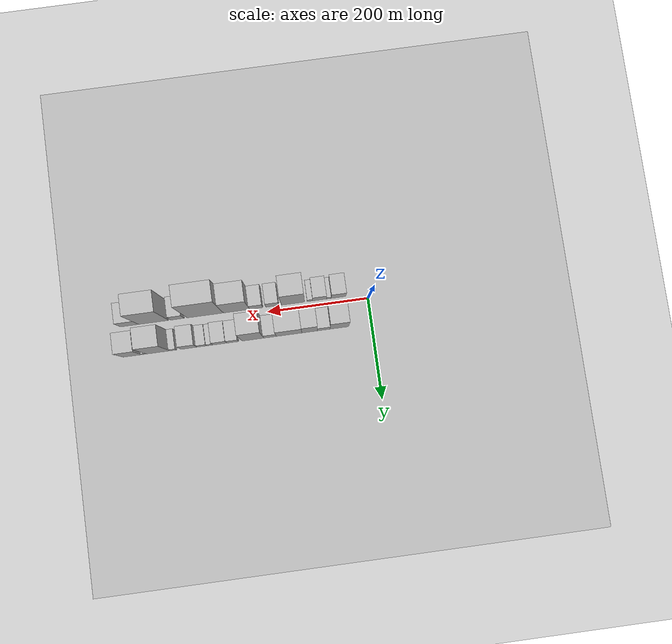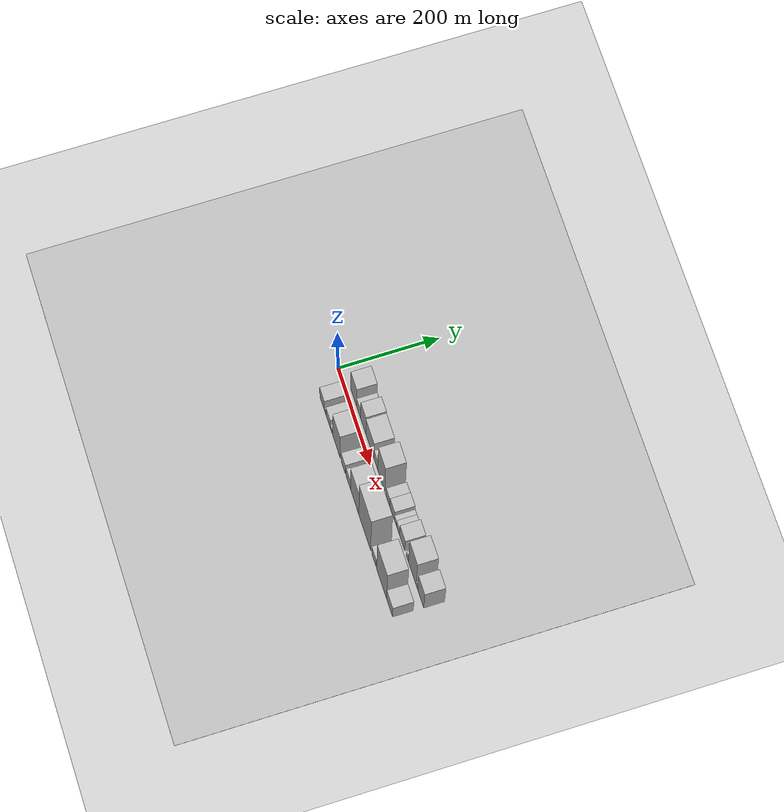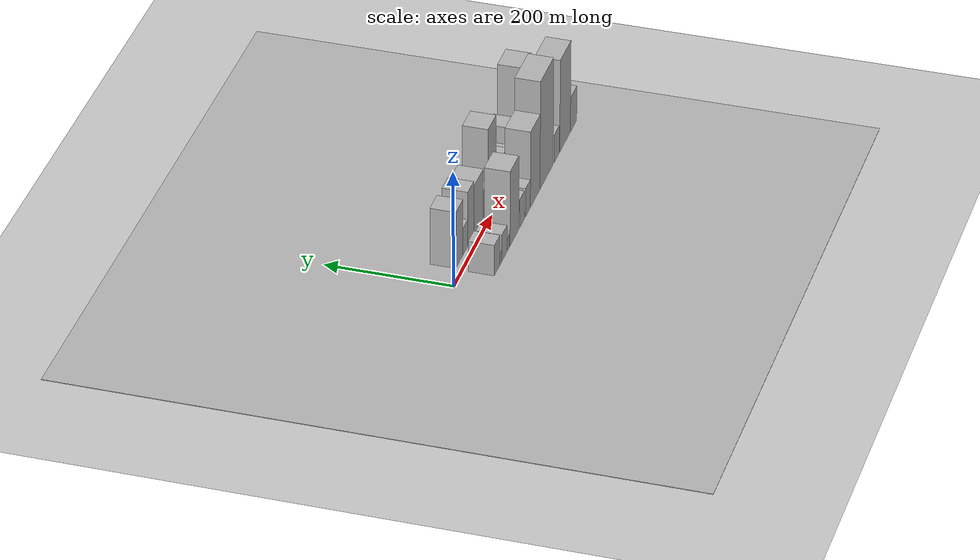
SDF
<?xml version="1.0" encoding="utf-8"?>

<sdf version="1.6">

   <world name="default">

      <gui fullscreen="0">

         <camera name="user_camera">

            <pose>-15 0 4.57585 0 0 0</pose>

            <view_controller>orbit</view_controller>

         </camera>

      </gui>

      <scene>

         <sky>

           <clouds>

             <speed>12</speed>

           </clouds>

         </sky>

         <ambient>0.4 0.4 0.4 1</ambient>

         <background>0.7 0.7 0.7 1</background>

         <shadows>1</shadows>

      </scene>

      <gravity>0 0 -9.8066</gravity>

      <magnetic_field>6e-06 2.3e-05 -4.2e-05</magnetic_field>

      <physics default="0" name="default_physics" type="ode">

         <ode>

            <solver>

               <type>quick</type>

               <iters>10</iters>

               <sor>1.0</sor>

               <use_dynamic_moi_rescaling>0</use_dynamic_moi_rescaling>

            </solver>

            <constraints>

               <cfm>0</cfm>

               <erp>0.2</erp>

               <contact_max_correcting_vel>100</contact_max_correcting_vel>

               <contact_surface_layer>0.001</contact_surface_layer>

            </constraints>

         </ode>

         <max_step_size>0.004</max_step_size>

         <real_time_factor>1</real_time_factor>

         <real_time_update_rate>250</real_time_update_rate>

      </physics>

      <light name="sun" type="directional">

         <cast_shadows>1</cast_shadows>

         <pose>0 0 10 0 0 0</pose>

         <diffuse>0.8 0.8 0.8 1</diffuse>

         <specular>0.2 0.2 0.2 1</specular>

         <attenuation>

            <range>1000</range>

            <constant>0.9</constant>

            <linear>0.01</linear>

            <quadratic>0.001</quadratic>

         </attenuation>

         <direction>-0.5 0.1 -0.9</direction>

      </light>

      <include>

         <name>ground_plane_1</name>

         <uri>model://HANNAS_ground_plane</uri>

         <pose>0 0 0  0 0 0</pose>

      </include>

      <include>

         <name>ground_plane_2</name>

         <uri>model://HANNAS_ground_plane</uri>

         <pose>100 0 0  0 0 0</pose>

      </include>

      <model name="building_1">

         <static>1</static>

         <pose frame="">64.4262 30.0000 0 0.000000 0.000000 1.570796</pose>

         <link name="link">

            <pose frame="">0 0 49.50 0 0 0</pose>

            <collision name="collision">

               <geometry>

                  <box>

                     <size>40.0000 36.8524 99.0000</size>

                  </box>

               </geometry>

               <max_contacts>10</max_contacts>

               <surface>

                  <contact>

                     <ode/>

                  </contact>

                  <bounce/>

                  <friction>

                     <torsional>

                        <ode/>

                     </torsional>

                     <ode/>

                  </friction>

               </surface>

            </collision>

            <visual name="visual">

               <cast_shadows>0</cast_shadows>

               <geometry>

                  <box>

                     <size>40.0000 36.8524 99.0000</size>

                  </box>

               </geometry>

               <material>

                  <script>

                     <uri>model://HANNAS_wall/materials/scripts</uri>

                     <uri>model://HANNAS_wall/materials/textures</uri>

                     <name>vrc/HANNAS_wall</name>

                  </script>

               </material>

            </visual>

            <self_collide>0</self_collide>

            <enable_wind>0</enable_wind>

            <kinematic>0</kinematic>

         </link>

      </model>

      <model name="building_2">

         <static>1</static>

         <pose frame="">95.2699 30.0000 0 0.000000 0.000000 1.570796</pose>

         <link name="link">

            <pose frame="">0 0 24.00 0 0 0</pose>

            <collision name="collision">

               <geometry>

                  <box>

                     <size>40.0000 24.8349 48.0000</size>

                  </box>

               </geometry>

               <max_contacts>10</max_contacts>

               <surface>

                  <contact>

                     <ode/>

                  </contact>

                  <bounce/>

                  <friction>

                     <torsional>

                        <ode/>

                     </torsional>

                     <ode/>

                  </friction>

               </surface>

            </collision>

            <visual name="visual">

               <cast_shadows>0</cast_shadows>

               <geometry>

                  <box>

                     <size>40.0000 24.8349 48.0000</size>

                  </box>

               </geometry>

               <material>

                  <script>

                     <uri>model://HANNAS_wall/materials/scripts</uri>

                     <uri>model://HANNAS_wall/materials/textures</uri>

                     <name>vrc/HANNAS_wall</name>

                  </script>

               </material>

            </visual>

            <self_collide>0</self_collide>

            <enable_wind>0</enable_wind>

            <kinematic>0</kinematic>

         </link>

      </model>

      <model name="building_3">

         <static>1</static>

         <pose frame="">123.1654 30.0000 0 0.000000 0.000000 1.570796</pose>

         <link name="link">

            <pose frame="">0 0 48.00 0 0 0</pose>

            <collision name="collision">

               <geometry>

                  <box>

                     <size>40.0000 30.9561 96.0000</size>

                  </box>

               </geometry>

               <max_contacts>10</max_contacts>

               <surface>

                  <contact>

                     <ode/>

                  </contact>

                  <bounce/>

                  <friction>

                     <torsional>

                        <ode/>

                     </torsional>

                     <ode/>

                  </friction>

               </surface>

            </collision>

            <visual name="visual">

               <cast_shadows>0</cast_shadows>

               <geometry>

                  <box>

                     <size>40.0000 30.9561 96.0000</size>

                  </box>

               </geometry>

               <material>

                  <script>

                     <uri>model://HANNAS_wall/materials/scripts</uri>

                     <uri>model://HANNAS_wall/materials/textures</uri>

                     <name>vrc/HANNAS_wall</name>

                  </script>

               </material>

            </visual>

            <self_collide>0</self_collide>

            <enable_wind>0</enable_wind>

            <kinematic>0</kinematic>

         </link>

      </model>

      <model name="building_4">

         <static>1</static>

         <pose frame="">163.8862 30.0000 0 0.000000 0.000000 1.570796</pose>

         <link name="link">

            <pose frame="">0 0 43.50 0 0 0</pose>

            <collision name="collision">

               <geometry>

                  <box>

                     <size>40.0000 50.4856 87.0000</size>

                  </box>

               </geometry>

               <max_contacts>10</max_contacts>

               <surface>

                  <contact>

                     <ode/>

                  </contact>

                  <bounce/>

                  <friction>

                     <torsional>

                        <ode/>

                     </torsional>

                     <ode/>

                  </friction>

               </surface>

            </collision>

            <visual name="visual">

               <cast_shadows>0</cast_shadows>

               <geometry>

                  <box>

                     <size>40.0000 50.4856 87.0000</size>

                  </box>

               </geometry>

               <material>

                  <script>

                     <uri>model://HANNAS_wall/materials/scripts</uri>

                     <uri>model://HANNAS_wall/materials/textures</uri>

                     <name>vrc/HANNAS_wall</name>

                  </script>

               </material>

            </visual>

            <self_collide>0</self_collide>

            <enable_wind>0</enable_wind>

            <kinematic>0</kinematic>

         </link>

      </model>

      <model name="building_5">

         <static>1</static>

         <pose frame="">201.5334 30.0000 0 0.000000 0.000000 1.570796</pose>

         <link name="link">

            <pose frame="">0 0 24.00 0 0 0</pose>

            <collision name="collision">

               <geometry>

                  <box>

                     <size>40.0000 24.8087 48.0000</size>

                  </box>

               </geometry>

               <max_contacts>10</max_contacts>

               <surface>

                  <contact>

                     <ode/>

                  </contact>

                  <bounce/>

                  <friction>

                     <torsional>

                        <ode/>

                     </torsional>

                     <ode/>

                  </friction>

               </surface>

            </collision>

            <visual name="visual">

               <cast_shadows>0</cast_shadows>

               <geometry>

                  <box>

                     <size>40.0000 24.8087 48.0000</size>

                  </box>

               </geometry>

               <material>

                  <script>

                     <uri>model://HANNAS_wall/materials/scripts</uri>

                     <uri>model://HANNAS_wall/materials/textures</uri>

                     <name>vrc/HANNAS_wall</name>

                  </script>

               </material>

            </visual>

            <self_collide>0</self_collide>

            <enable_wind>0</enable_wind>

            <kinematic>0</kinematic>

         </link>

      </model>

      <model name="building_6">

         <static>1</static>

         <pose frame="">235.2693 30.0000 0 0.000000 0.000000 1.570796</pose>

         <link name="link">

            <pose frame="">0 0 70.50 0 0 0</pose>

            <collision name="collision">

               <geometry>

                  <box>

                     <size>40.0000 42.6633 141.0000</size>

                  </box>

               </geometry>

               <max_contacts>10</max_contacts>

               <surface>

                  <contact>

                     <ode/>

                  </contact>

                  <bounce/>

                  <friction>

                     <torsional>

                        <ode/>

                     </torsional>

                     <ode/>

                  </friction>

               </surface>

            </collision>

            <visual name="visual">

               <cast_shadows>0</cast_shadows>

               <geometry>

                  <box>

                     <size>40.0000 42.6633 141.0000</size>

                  </box>

               </geometry>

               <material>

                  <script>

                     <uri>model://HANNAS_wall/materials/scripts</uri>

                     <uri>model://HANNAS_wall/materials/textures</uri>

                     <name>vrc/HANNAS_wall</name>

                  </script>

               </material>

            </visual>

            <self_collide>0</self_collide>

            <enable_wind>0</enable_wind>

            <kinematic>0</kinematic>

         </link>

      </model>

      <model name="building_7">

         <static>1</static>

         <pose frame="">275.1503 30.0000 0 0.000000 0.000000 1.570796</pose>

         <link name="link">

            <pose frame="">0 0 21.00 0 0 0</pose>

            <collision name="collision">

               <geometry>

                  <box>

                     <size>40.0000 23.0987 42.0000</size>

                  </box>

               </geometry>

               <max_contacts>10</max_contacts>

               <surface>

                  <contact>

                     <ode/>

                  </contact>

                  <bounce/>

                  <friction>

                     <torsional>

                        <ode/>

                     </torsional>

                     <ode/>

                  </friction>

               </surface>

            </collision>

            <visual name="visual">

               <cast_shadows>0</cast_shadows>

               <geometry>

                  <box>

                     <size>40.0000 23.0987 42.0000</size>

                  </box>

               </geometry>

               <material>

                  <script>

                     <uri>model://HANNAS_wall/materials/scripts</uri>

                     <uri>model://HANNAS_wall/materials/textures</uri>

                     <name>vrc/HANNAS_wall</name>

                  </script>

               </material>

            </visual>

            <self_collide>0</self_collide>

            <enable_wind>0</enable_wind>

            <kinematic>0</kinematic>

         </link>

      </model>

      <model name="building_8">

         <static>1</static>

         <pose frame="">300.5536 30.0000 0 0.000000 0.000000 1.570796</pose>

         <link name="link">

            <pose frame="">0 0 24.00 0 0 0</pose>

            <collision name="collision">

               <geometry>

                  <box>

                     <size>40.0000 27.7080 48.0000</size>

                  </box>

               </geometry>

               <max_contacts>10</max_contacts>

               <surface>

                  <contact>

                     <ode/>

                  </contact>

                  <bounce/>

                  <friction>

                     <torsional>

                        <ode/>

                     </torsional>

                     <ode/>

                  </friction>

               </surface>

            </collision>

            <visual name="visual">

               <cast_shadows>0</cast_shadows>

               <geometry>

                  <box>

                     <size>40.0000 27.7080 48.0000</size>

                  </box>

               </geometry>

               <material>

                  <script>

                     <uri>model://HANNAS_wall/materials/scripts</uri>

                     <uri>model://HANNAS_wall/materials/textures</uri>

                     <name>vrc/HANNAS_wall</name>

                  </script>

               </material>

            </visual>

            <self_collide>0</self_collide>

            <enable_wind>0</enable_wind>

            <kinematic>0</kinematic>

         </link>

      </model>

      <model name="building_9">

         <static>1</static>

         <pose frame="">320.4034 30.0000 0 0.000000 0.000000 1.570796</pose>

         <link name="link">

            <pose frame="">0 0 13.50 0 0 0</pose>

            <collision name="collision">

               <geometry>

                  <box>

                     <size>40.0000 11.9915 27.0000</size>

                  </box>

               </geometry>

               <max_contacts>10</max_contacts>

               <surface>

                  <contact>

                     <ode/>

                  </contact>

                  <bounce/>

                  <friction>

                     <torsional>

                        <ode/>

                     </torsional>

                     <ode/>

                  </friction>

               </surface>

            </collision>

            <visual name="visual">

               <cast_shadows>0</cast_shadows>

               <geometry>

                  <box>

                     <size>40.0000 11.9915 27.0000</size>

                  </box>

               </geometry>

               <material>

                  <script>

                     <uri>model://HANNAS_wall/materials/scripts</uri>

                     <uri>model://HANNAS_wall/materials/textures</uri>

                     <name>vrc/HANNAS_wall</name>

                  </script>

               </material>

            </visual>

            <self_collide>0</self_collide>

            <enable_wind>0</enable_wind>

            <kinematic>0</kinematic>

         </link>

      </model>

      <model name="building_10">

         <static>1</static>

         <pose frame="">335.8590 30.0000 0 0.000000 0.000000 1.570796</pose>

         <link name="link">

            <pose frame="">0 0 16.50 0 0 0</pose>

            <collision name="collision">

               <geometry>

                  <box>

                     <size>40.0000 18.9196 33.0000</size>

                  </box>

               </geometry>

               <max_contacts>10</max_contacts>

               <surface>

                  <contact>

                     <ode/>

                  </contact>

                  <bounce/>

                  <friction>

                     <torsional>

                        <ode/>

                     </torsional>

                     <ode/>

                  </friction>

               </surface>

            </collision>

            <visual name="visual">

               <cast_shadows>0</cast_shadows>

               <geometry>

                  <box>

                     <size>40.0000 18.9196 33.0000</size>

                  </box>

               </geometry>

               <material>

                  <script>

                     <uri>model://HANNAS_wall/materials/scripts</uri>

                     <uri>model://HANNAS_wall/materials/textures</uri>

                     <name>vrc/HANNAS_wall</name>

                  </script>

               </material>

            </visual>

            <self_collide>0</self_collide>

            <enable_wind>0</enable_wind>

            <kinematic>0</kinematic>

         </link>

      </model>

      <model name="building_11">

         <static>1</static>

         <pose frame="">361.2420 30.0000 0 0.000000 0.000000 1.570796</pose>

         <link name="link">

            <pose frame="">0 0 31.50 0 0 0</pose>

            <collision name="collision">

               <geometry>

                  <box>

                     <size>40.0000 31.8463 63.0000</size>

                  </box>

               </geometry>

               <max_contacts>10</max_contacts>

               <surface>

                  <contact>

                     <ode/>

                  </contact>

                  <bounce/>

                  <friction>

                     <torsional>

                        <ode/>

                     </torsional>

                     <ode/>

                  </friction>

               </surface>

            </collision>

            <visual name="visual">

               <cast_shadows>0</cast_shadows>

               <geometry>

                  <box>

                     <size>40.0000 31.8463 63.0000</size>

                  </box>

               </geometry>

               <material>

                  <script>

                     <uri>model://HANNAS_wall/materials/scripts</uri>

                     <uri>model://HANNAS_wall/materials/textures</uri>

                     <name>vrc/HANNAS_wall</name>

                  </script>

               </material>

            </visual>

            <self_collide>0</self_collide>

            <enable_wind>0</enable_wind>

            <kinematic>0</kinematic>

         </link>

      </model>

      <model name="building_12">

         <static>1</static>

         <pose frame="">392.7208 30.0000 0 0.000000 0.000000 1.570796</pose>

         <link name="link">

            <pose frame="">0 0 13.50 0 0 0</pose>

            <collision name="collision">

               <geometry>

                  <box>

                     <size>40.0000 13.1114 27.0000</size>

                  </box>

               </geometry>

               <max_contacts>10</max_contacts>

               <surface>

                  <contact>

                     <ode/>

                  </contact>

                  <bounce/>

                  <friction>

                     <torsional>

                        <ode/>

                     </torsional>

                     <ode/>

                  </friction>

               </surface>

            </collision>

            <visual name="visual">

               <cast_shadows>0</cast_shadows>

               <geometry>

                  <box>

                     <size>40.0000 13.1114 27.0000</size>

                  </box>

               </geometry>

               <material>

                  <script>

                     <uri>model://HANNAS_wall/materials/scripts</uri>

                     <uri>model://HANNAS_wall/materials/textures</uri>

                     <name>vrc/HANNAS_wall</name>

                  </script>

               </material>

            </visual>

            <self_collide>0</self_collide>

            <enable_wind>0</enable_wind>

            <kinematic>0</kinematic>

         </link>

      </model>

      <model name="building_13">

         <static>1</static>

         <pose frame="">422.3092 30.0000 0 0.000000 0.000000 1.570796</pose>

         <link name="link">

            <pose frame="">0 0 69.00 0 0 0</pose>

            <collision name="collision">

               <geometry>

                  <box>

                     <size>40.0000 46.0652 138.0000</size>

                  </box>

               </geometry>

               <max_contacts>10</max_contacts>

               <surface>

                  <contact>

                     <ode/>

                  </contact>

                  <bounce/>

                  <friction>

                     <torsional>

                        <ode/>

                     </torsional>

                     <ode/>

                  </friction>

               </surface>

            </collision>

            <visual name="visual">

               <cast_shadows>0</cast_shadows>

               <geometry>

                  <box>

                     <size>40.0000 46.0652 138.0000</size>

                  </box>

               </geometry>

               <material>

                  <script>

                     <uri>model://HANNAS_wall/materials/scripts</uri>

                     <uri>model://HANNAS_wall/materials/textures</uri>

                     <name>vrc/HANNAS_wall</name>

                  </script>

               </material>

            </visual>

            <self_collide>0</self_collide>

            <enable_wind>0</enable_wind>

            <kinematic>0</kinematic>

         </link>

      </model>

      <model name="building_14">

         <static>1</static>

         <pose frame="">449.7823 30.0000 0 0.000000 0.000000 1.570796</pose>

         <link name="link">

            <pose frame="">0 0 10.50 0 0 0</pose>

            <collision name="collision">

               <geometry>

                  <box>

                     <size>40.0000 8.8811 21.0000</size>

                  </box>

               </geometry>

               <max_contacts>10</max_contacts>

               <surface>

                  <contact>

                     <ode/>

                  </contact>

                  <bounce/>

                  <friction>

                     <torsional>

                        <ode/>

                     </torsional>

                     <ode/>

                  </friction>

               </surface>

            </collision>

            <visual name="visual">

               <cast_shadows>0</cast_shadows>

               <geometry>

                  <box>

                     <size>40.0000 8.8811 21.0000</size>

                  </box>

               </geometry>

               <material>

                  <script>

                     <uri>model://HANNAS_wall/materials/scripts</uri>

                     <uri>model://HANNAS_wall/materials/textures</uri>

                     <name>vrc/HANNAS_wall</name>

                  </script>

               </material>

            </visual>

            <self_collide>0</self_collide>

            <enable_wind>0</enable_wind>

            <kinematic>0</kinematic>

         </link>

      </model>

      <model name="building_15">

         <static>1</static>

         <pose frame="">472.8914 30.0000 0 0.000000 0.000000 1.570796</pose>

         <link name="link">

            <pose frame="">0 0 48.00 0 0 0</pose>

            <collision name="collision">

               <geometry>

                  <box>

                     <size>40.0000 37.3371 96.0000</size>

                  </box>

               </geometry>

               <max_contacts>10</max_contacts>

               <surface>

                  <contact>

                     <ode/>

                  </contact>

                  <bounce/>

                  <friction>

                     <torsional>

                        <ode/>

                     </torsional>

                     <ode/>

                  </friction>

               </surface>

            </collision>

            <visual name="visual">

               <cast_shadows>0</cast_shadows>

               <geometry>

                  <box>

                     <size>40.0000 37.3371 96.0000</size>

                  </box>

               </geometry>

               <material>

                  <script>

                     <uri>model://HANNAS_wall/materials/scripts</uri>

                     <uri>model://HANNAS_wall/materials/textures</uri>

                     <name>vrc/HANNAS_wall</name>

                  </script>

               </material>

            </visual>

            <self_collide>0</self_collide>

            <enable_wind>0</enable_wind>

            <kinematic>0</kinematic>

         </link>

      </model>

      <model name="building_16">

         <static>1</static>

         <pose frame="">57.6384 -30.0000 0 0.000000 0.000000 1.570796</pose>

         <link name="link">

            <pose frame="">0 0 27.00 0 0 0</pose>

            <collision name="collision">

               <geometry>

                  <box>

                     <size>40.0000 29.2769 54.0000</size>

                  </box>

               </geometry>

               <max_contacts>10</max_contacts>

               <surface>

                  <contact>

                     <ode/>

                  </contact>

                  <bounce/>

                  <friction>

                     <torsional>

                        <ode/>

                     </torsional>

                     <ode/>

                  </friction>

               </surface>

            </collision>

            <visual name="visual">

               <cast_shadows>0</cast_shadows>

               <geometry>

                  <box>

                     <size>40.0000 29.2769 54.0000</size>

                  </box>

               </geometry>

               <material>

                  <script>

                     <uri>model://HANNAS_wall/materials/scripts</uri>

                     <uri>model://HANNAS_wall/materials/textures</uri>

                     <name>vrc/HANNAS_wall</name>

                  </script>

               </material>

            </visual>

            <self_collide>0</self_collide>

            <enable_wind>0</enable_wind>

            <kinematic>0</kinematic>

         </link>

      </model>

      <model name="building_17">

         <static>1</static>

         <pose frame="">77.0405 -30.0000 0 0.000000 0.000000 1.570796</pose>

         <link name="link">

            <pose frame="">0 0 10.50 0 0 0</pose>

            <collision name="collision">

               <geometry>

                  <box>

                     <size>40.0000 9.5273 21.0000</size>

                  </box>

               </geometry>

               <max_contacts>10</max_contacts>

               <surface>

                  <contact>

                     <ode/>

                  </contact>

                  <bounce/>

                  <friction>

                     <torsional>

                        <ode/>

                     </torsional>

                     <ode/>

                  </friction>

               </surface>

            </collision>

            <visual name="visual">

               <cast_shadows>0</cast_shadows>

               <geometry>

                  <box>

                     <size>40.0000 9.5273 21.0000</size>

                  </box>

               </geometry>

               <material>

                  <script>

                     <uri>model://HANNAS_wall/materials/scripts</uri>

                     <uri>model://HANNAS_wall/materials/textures</uri>

                     <name>vrc/HANNAS_wall</name>

                  </script>

               </material>

            </visual>

            <self_collide>0</self_collide>

            <enable_wind>0</enable_wind>

            <kinematic>0</kinematic>

         </link>

      </model>

      <model name="building_18">

         <static>1</static>

         <pose frame="">95.5646 -30.0000 0 0.000000 0.000000 1.570796</pose>

         <link name="link">

            <pose frame="">0 0 24.00 0 0 0</pose>

            <collision name="collision">

               <geometry>

                  <box>

                     <size>40.0000 27.5208 48.0000</size>

                  </box>

               </geometry>

               <max_contacts>10</max_contacts>

               <surface>

                  <contact>

                     <ode/>

                  </contact>

                  <bounce/>

                  <friction>

                     <torsional>

                        <ode/>

                     </torsional>

                     <ode/>

                  </friction>

               </surface>

            </collision>

            <visual name="visual">

               <cast_shadows>0</cast_shadows>

               <geometry>

                  <box>

                     <size>40.0000 27.5208 48.0000</size>

                  </box>

               </geometry>

               <material>

                  <script>

                     <uri>model://HANNAS_wall/materials/scripts</uri>

                     <uri>model://HANNAS_wall/materials/textures</uri>

                     <name>vrc/HANNAS_wall</name>

                  </script>

               </material>

            </visual>

            <self_collide>0</self_collide>

            <enable_wind>0</enable_wind>

            <kinematic>0</kinematic>

         </link>

      </model>

      <model name="building_19">

         <static>1</static>

         <pose frame="">114.7574 -30.0000 0 0.000000 0.000000 1.570796</pose>

         <link name="link">

            <pose frame="">0 0 12.00 0 0 0</pose>

            <collision name="collision">

               <geometry>

                  <box>

                     <size>40.0000 10.8649 24.0000</size>

                  </box>

               </geometry>

               <max_contacts>10</max_contacts>

               <surface>

                  <contact>

                     <ode/>

                  </contact>

                  <bounce/>

                  <friction>

                     <torsional>

                        <ode/>

                     </torsional>

                     <ode/>

                  </friction>

               </surface>

            </collision>

            <visual name="visual">

               <cast_shadows>0</cast_shadows>

               <geometry>

                  <box>

                     <size>40.0000 10.8649 24.0000</size>

                  </box>

               </geometry>

               <material>

                  <script>

                     <uri>model://HANNAS_wall/materials/scripts</uri>

                     <uri>model://HANNAS_wall/materials/textures</uri>

                     <name>vrc/HANNAS_wall</name>

                  </script>

               </material>

            </visual>

            <self_collide>0</self_collide>

            <enable_wind>0</enable_wind>

            <kinematic>0</kinematic>

         </link>

      </model>

      <model name="building_20">

         <static>1</static>

         <pose frame="">148.1999 -30.0000 0 0.000000 0.000000 1.570796</pose>

         <link name="link">

            <pose frame="">0 0 66.00 0 0 0</pose>

            <collision name="collision">

               <geometry>

                  <box>

                     <size>40.0000 46.0201 132.0000</size>

                  </box>

               </geometry>

               <max_contacts>10</max_contacts>

               <surface>

                  <contact>

                     <ode/>

                  </contact>

                  <bounce/>

                  <friction>

                     <torsional>

                        <ode/>

                     </torsional>

                     <ode/>

                  </friction>

               </surface>

            </collision>

            <visual name="visual">

               <cast_shadows>0</cast_shadows>

               <geometry>

                  <box>

                     <size>40.0000 46.0201 132.0000</size>

                  </box>

               </geometry>

               <material>

                  <script>

                     <uri>model://HANNAS_wall/materials/scripts</uri>

                     <uri>model://HANNAS_wall/materials/textures</uri>

                     <name>vrc/HANNAS_wall</name>

                  </script>

               </material>

            </visual>

            <self_collide>0</self_collide>

            <enable_wind>0</enable_wind>

            <kinematic>0</kinematic>

         </link>

      </model>

      <model name="building_21">

         <static>1</static>

         <pose frame="">189.1017 -30.0000 0 0.000000 0.000000 1.570796</pose>

         <link name="link">

            <pose frame="">0 0 25.50 0 0 0</pose>

            <collision name="collision">

               <geometry>

                  <box>

                     <size>40.0000 25.7834 51.0000</size>

                  </box>

               </geometry>

               <max_contacts>10</max_contacts>

               <surface>

                  <contact>

                     <ode/>

                  </contact>

                  <bounce/>

                  <friction>

                     <torsional>

                        <ode/>

                     </torsional>

                     <ode/>

                  </friction>

               </surface>

            </collision>

            <visual name="visual">

               <cast_shadows>0</cast_shadows>

               <geometry>

                  <box>

                     <size>40.0000 25.7834 51.0000</size>

                  </box>

               </geometry>

               <material>

                  <script>

                     <uri>model://HANNAS_wall/materials/scripts</uri>

                     <uri>model://HANNAS_wall/materials/textures</uri>

                     <name>vrc/HANNAS_wall</name>

                  </script>

               </material>

            </visual>

            <self_collide>0</self_collide>

            <enable_wind>0</enable_wind>

            <kinematic>0</kinematic>

         </link>

      </model>

      <model name="building_22">

         <static>1</static>

         <pose frame="">221.1020 -30.0000 0 0.000000 0.000000 1.570796</pose>

         <link name="link">

            <pose frame="">0 0 25.50 0 0 0</pose>

            <collision name="collision">

               <geometry>

                  <box>

                     <size>40.0000 26.2173 51.0000</size>

                  </box>

               </geometry>

               <max_contacts>10</max_contacts>

               <surface>

                  <contact>

                     <ode/>

                  </contact>

                  <bounce/>

                  <friction>

                     <torsional>

                        <ode/>

                     </torsional>

                     <ode/>

                  </friction>

               </surface>

            </collision>

            <visual name="visual">

               <cast_shadows>0</cast_shadows>

               <geometry>

                  <box>

                     <size>40.0000 26.2173 51.0000</size>

                  </box>

               </geometry>

               <material>

                  <script>

                     <uri>model://HANNAS_wall/materials/scripts</uri>

                     <uri>model://HANNAS_wall/materials/textures</uri>

                     <name>vrc/HANNAS_wall</name>

                  </script>

               </material>

            </visual>

            <self_collide>0</self_collide>

            <enable_wind>0</enable_wind>

            <kinematic>0</kinematic>

         </link>

      </model>

      <model name="building_23">

         <static>1</static>

         <pose frame="">260.3168 -30.0000 0 0.000000 0.000000 1.570796</pose>

         <link name="link">

            <pose frame="">0 0 67.50 0 0 0</pose>

            <collision name="collision">

               <geometry>

                  <box>

                     <size>40.0000 52.2123 135.0000</size>

                  </box>

               </geometry>

               <max_contacts>10</max_contacts>

               <surface>

                  <contact>

                     <ode/>

                  </contact>

                  <bounce/>

                  <friction>

                     <torsional>

                        <ode/>

                     </torsional>

                     <ode/>

                  </friction>

               </surface>

            </collision>

            <visual name="visual">

               <cast_shadows>0</cast_shadows>

               <geometry>

                  <box>

                     <size>40.0000 52.2123 135.0000</size>

                  </box>

               </geometry>

               <material>

                  <script>

                     <uri>model://HANNAS_wall/materials/scripts</uri>

                     <uri>model://HANNAS_wall/materials/textures</uri>

                     <name>vrc/HANNAS_wall</name>

                  </script>

               </material>

            </visual>

            <self_collide>0</self_collide>

            <enable_wind>0</enable_wind>

            <kinematic>0</kinematic>

         </link>

      </model>

      <model name="building_24">

         <static>1</static>

         <pose frame="">322.3757 -30.0000 0 0.000000 0.000000 1.570796</pose>

         <link name="link">

            <pose frame="">0 0 96.00 0 0 0</pose>

            <collision name="collision">

               <geometry>

                  <box>

                     <size>40.0000 71.9055 192.0000</size>

                  </box>

               </geometry>

               <max_contacts>10</max_contacts>

               <surface>

                  <contact>

                     <ode/>

                  </contact>

                  <bounce/>

                  <friction>

                     <torsional>

                        <ode/>

                     </torsional>

                     <ode/>

                  </friction>

               </surface>

            </collision>

            <visual name="visual">

               <cast_shadows>0</cast_shadows>

               <geometry>

                  <box>

                     <size>40.0000 71.9055 192.0000</size>

                  </box>

               </geometry>

               <material>

                  <script>

                     <uri>model://HANNAS_wall/materials/scripts</uri>

                     <uri>model://HANNAS_wall/materials/textures</uri>

                     <name>vrc/HANNAS_wall</name>

                  </script>

               </material>

            </visual>

            <self_collide>0</self_collide>

            <enable_wind>0</enable_wind>

            <kinematic>0</kinematic>

         </link>

      </model>

      <model name="building_25">

         <static>1</static>

         <pose frame="">377.7022 -30.0000 0 0.000000 0.000000 1.570796</pose>

         <link name="link">

            <pose frame="">0 0 25.50 0 0 0</pose>

            <collision name="collision">

               <geometry>

                  <box>

                     <size>40.0000 26.7474 51.0000</size>

                  </box>

               </geometry>

               <max_contacts>10</max_contacts>

               <surface>

                  <contact>

                     <ode/>

                  </contact>

                  <bounce/>

                  <friction>

                     <torsional>

                        <ode/>

                     </torsional>

                     <ode/>

                  </friction>

               </surface>

            </collision>

            <visual name="visual">

               <cast_shadows>0</cast_shadows>

               <geometry>

                  <box>

                     <size>40.0000 26.7474 51.0000</size>

                  </box>

               </geometry>

               <material>

                  <script>

                     <uri>model://HANNAS_wall/materials/scripts</uri>

                     <uri>model://HANNAS_wall/materials/textures</uri>

                     <name>vrc/HANNAS_wall</name>

                  </script>

               </material>

            </visual>

            <self_collide>0</self_collide>

            <enable_wind>0</enable_wind>

            <kinematic>0</kinematic>

         </link>

      </model>

      <model name="building_26">

         <static>1</static>

         <pose frame="">424.8310 -30.0000 0 0.000000 0.000000 1.570796</pose>

         <link name="link">

            <pose frame="">0 0 82.50 0 0 0</pose>

            <collision name="collision">

               <geometry>

                  <box>

                     <size>40.0000 59.5100 165.0000</size>

                  </box>

               </geometry>

               <max_contacts>10</max_contacts>

               <surface>

                  <contact>

                     <ode/>

                  </contact>

                  <bounce/>

                  <friction>

                     <torsional>

                        <ode/>

                     </torsional>

                     <ode/>

                  </friction>

               </surface>

            </collision>

            <visual name="visual">

               <cast_shadows>0</cast_shadows>

               <geometry>

                  <box>

                     <size>40.0000 59.5100 165.0000</size>

                  </box>

               </geometry>

               <material>

                  <script>

                     <uri>model://HANNAS_wall/materials/scripts</uri>

                     <uri>model://HANNAS_wall/materials/textures</uri>

                     <name>vrc/HANNAS_wall</name>

                  </script>

               </material>

            </visual>

            <self_collide>0</self_collide>

            <enable_wind>0</enable_wind>

            <kinematic>0</kinematic>

         </link>

      </model>

      <model name="building_27">

         <static>1</static>

         <pose frame="">472.5029 -30.0000 0 0.000000 0.000000 1.570796</pose>

         <link name="link">

            <pose frame="">0 0 31.50 0 0 0</pose>

            <collision name="collision">

               <geometry>

                  <box>

                     <size>40.0000 35.8338 63.0000</size>

                  </box>

               </geometry>

               <max_contacts>10</max_contacts>

               <surface>

                  <contact>

                     <ode/>

                  </contact>

                  <bounce/>

                  <friction>

                     <torsional>

                        <ode/>

                     </torsional>

                     <ode/>

                  </friction>

               </surface>

            </collision>

            <visual name="visual">

               <cast_shadows>0</cast_shadows>

               <geometry>

                  <box>

                     <size>40.0000 35.8338 63.0000</size>

                  </box>

               </geometry>

               <material>

                  <script>

                     <uri>model://HANNAS_wall/materials/scripts</uri>

                     <uri>model://HANNAS_wall/materials/textures</uri>

                     <name>vrc/HANNAS_wall</name>

                  </script>

               </material>

            </visual>

            <self_collide>0</self_collide>

            <enable_wind>0</enable_wind>

            <kinematic>0</kinematic>

         </link>

      </model>

   </world>

</sdf>

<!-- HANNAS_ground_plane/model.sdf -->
<sdf version="1.4">
<model name="HANNAS_ground_plane">
  <static>true</static>
    <link name="link">
      <collision name="collision">
        <geometry>
          <plane>
            <normal>0 0 1</normal>
            <size>1000 1000</size>
          </plane>
        </geometry>
        <surface>
          <friction>
            <ode>
              <mu>100</mu>
              <mu2>50</mu2>
            </ode>
          </friction>
        </surface>
      </collision>
      <visual name="visual">
        <cast_shadows>false</cast_shadows>
        <geometry>
          <plane>
            <normal>0 0 1</normal>
            <size>1000 1000</size>
          </plane>
        </geometry>
        <material>
          <script>
            <uri>model://HANNAS_ground_plane/materials/scripts/HANNAS_ground_plane.material</uri>
	    <uri>model://HANNAS_ground_plane/materials/textures</uri>
            <name>HANNASGroundPlane/Image</name>
          </script>
        </material>
      </visual>
    </link>
  </model>
</sdf>
